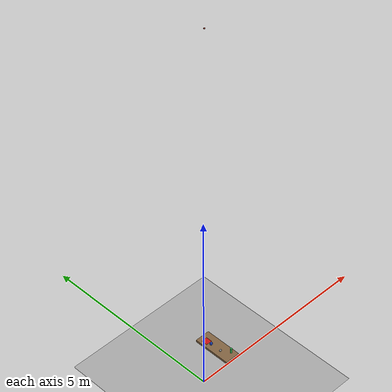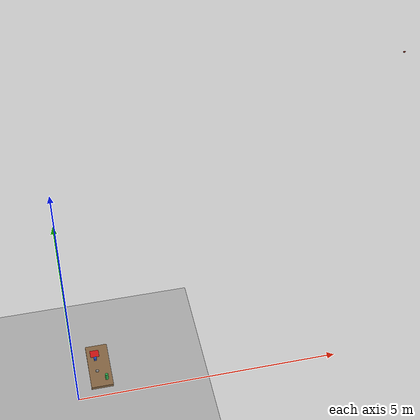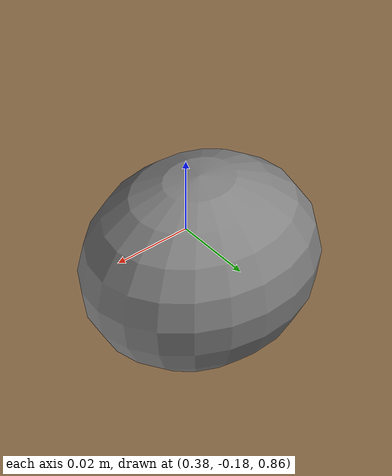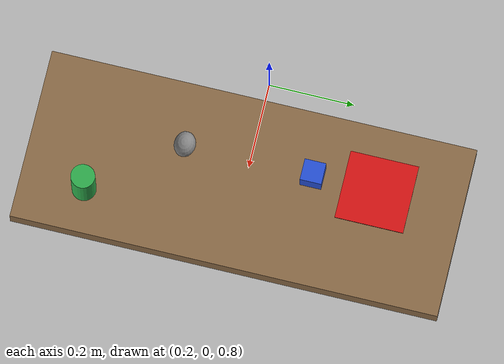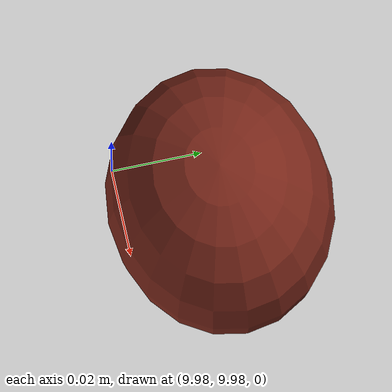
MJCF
<!-- Owner: backbone (ALL) -->
<mujoco model="ee4705_g1_tabletop">
  <compiler angle="radian"/>
  <!-- Preserve the existing scene solver settings; tune contacts only on pads/objects. -->
  <option timestep="0.002" integrator="implicitfast"/>
  <statistic extent="2" center="0.4 0 0.7"/>
  <visual>
    <map znear="0.0025" zfar="5"/>
    <global offwidth="640" offheight="480"/>
    <quality shadowsize="2048"/>
    <headlight diffuse="0.5 0.5 0.5" ambient="0.25 0.25 0.25" specular="0.2 0.2 0.2"/>
  </visual>
  <asset>
    <texture type="skybox" builtin="gradient" rgb1="0.7 0.8 0.9" rgb2="0.35 0.45 0.55" width="64" height="64"/>
    <texture name="grid" type="2d" builtin="checker" rgb1="0.8 0.8 0.8" rgb2="0.62 0.62 0.62" width="64" height="64"/>
    <material name="grid" texture="grid" texrepeat="10 10" reflectance="0.05"/>
  </asset>

  <worldbody>
    <light pos="0.5 0 3" dir="0 0 -1" diffuse="0.8 0.8 0.8"/>
    <light pos="2 1.5 2.5" dir="-0.5 -0.4 -0.8" diffuse="0.4 0.4 0.4"/>
    <geom name="floor" type="plane" size="2.5 2.5 0.1" material="grid"/>  <!-- finite 5x5 m floor: background (NaN depth) is visible beyond it -->

    <!-- Debug overhead camera (optional; not an onboard view) -->
    <camera name="overhead" pos="0.5 0 2.6" xyaxes="0 -1 0 1 0 0" fovy="55"/>

    <body name="table" pos="0.45 0 0.825">
      <geom name="table_top" type="box" size="0.20 0.50 0.025" rgba="0.55 0.42 0.28 1" friction="0.8 0.005 0.0001"/>
    </body>

    <!-- Finite red target region: visual-only thin box ON the table top. -->
    <body name="red_region" pos="0.40 0.30 0.8515">
      <geom name="red_region_geom" type="box" size="0.08 0.08 0.0015" rgba="0.85 0.08 0.08 1"
            contype="0" conaffinity="0"/>
    </body>

    <!-- Manipulable free bodies.  Default poses are placeholders; every
         trial reset re-places them from SceneConfig (unused objects are
         parked far outside the workspace). -->
    <body name="stone" pos="0.40 -0.15 0.88">
      <freejoint name="stone_free"/>
      <geom name="stone_geom" type="ellipsoid" size="0.030 0.025 0.025" rgba="0.52 0.52 0.52 1"
            density="1800" friction="0.9 0.005 0.01" condim="6"/>
    </body>
    <body name="stone2" pos="10 10 0.025">
      <freejoint name="stone2_free"/>
      <geom name="stone2_geom" type="ellipsoid" size="0.030 0.025 0.025" rgba="0.47 0.15 0.10 1"
            density="1800" friction="0.9 0.005 0.01" condim="6"/>
    </body>
    <body name="cube" pos="0.40 0.15 0.88">
      <freejoint name="cube_free"/>
      <geom name="cube_geom" type="box" size="0.025 0.025 0.025" rgba="0.15 0.32 0.85 1"
            density="600" friction="0.9 0.005 0.0001"/>
    </body>
    <body name="bottle" pos="0.55 -0.35 0.915">
      <freejoint name="bottle_free"/>
      <geom name="bottle_geom" type="cylinder" size="0.028 0.06" rgba="0.18 0.68 0.30 1"
            density="400" friction="0.7 0.005 0.005" condim="6"/>
    </body>
  </worldbody>

  <equality>
    <weld name="grasp_stone" body1="rg_base" body2="stone" active="false"/>
    <weld name="grasp_stone2" body1="rg_base" body2="stone2" active="false"/>
    <weld name="grasp_cube" body1="rg_base" body2="cube" active="false"/>
    <weld name="grasp_bottle" body1="rg_base" body2="bottle" active="false"/>
  </equality>
</mujoco>
